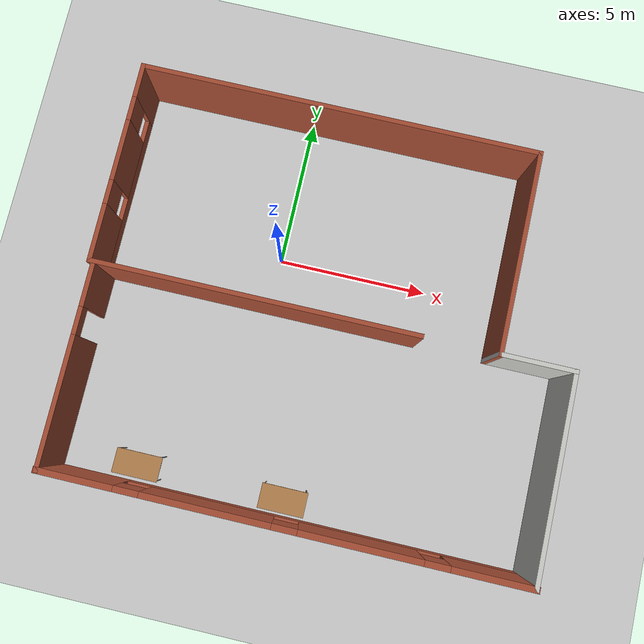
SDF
<sdf version="1.6">
 <world name="default">
  <model name="ground_plane">
   <static>1</static>
   <link name="link">
    <collision name="collision">
     <geometry><plane><normal>0 0 1</normal><size>100 100</size></plane></geometry>
     <surface><friction><ode><mu>100</mu><mu2>50</mu2></ode></friction></surface>
    </collision>
    <visual name="visual">
     <cast_shadows>0</cast_shadows>
     <geometry><plane><normal>0 0 1</normal><size>100 100</size></plane></geometry>
     <material>
      <script><uri>file://media/materials/scripts/gazebo.material</uri><name>Gazebo/Grey</name></script>
     </material>
    </visual>
   </link>
  </model>
  <model name="building">
   <link name="Wall_1">
    <pose>-7.59578 -3.28046 0 0 0 -1.5708</pose>
    <visual name="Wall_1_Visual_0">
     <pose>-2.59836 0 1.25 0 -0 0</pose>
     <geometry><box><size>1.55329 0.15 2.5</size></box></geometry>
     <material>
      <script><uri>file://media/materials/scripts/gazebo.material</uri><name>Gazebo/Bricks</name></script>
      <ambient>0.760784 0.662745 0.627451 1</ambient>
      <shader type="pixel"/>
      <diffuse>1 1 1 1</diffuse>
      <specular>0.2 0.2 0.2 1</specular>
      <emissive>0 0 0 1</emissive>
     </material>
     <meta><layer>0</layer></meta>
    </visual>
    <visual name="Wall_1_Visual_1">
     <pose>1.22664 0 1.25 0 -0 0</pose>
     <geometry><box><size>4.29671 0.15 2.5</size></box></geometry>
     <material>
      <script><uri>file://media/materials/scripts/gazebo.material</uri><name>Gazebo/Bricks</name></script>
      <ambient>0.760784 0.662745 0.627451 1</ambient>
      <shader type="pixel"/>
      <diffuse>1 1 1 1</diffuse>
      <specular>0.2 0.2 0.2 1</specular>
      <emissive>0 0 0 1</emissive>
     </material>
     <meta><layer>0</layer></meta>
    </visual>
    <visual name="Wall_1_Visual_2">
     <pose>-1.37171 0 2.25 0 -0 0</pose>
     <geometry><box><size>0.9 0.15 0.5</size></box></geometry>
     <material>
      <script><uri>file://media/materials/scripts/gazebo.material</uri><name>Gazebo/Bricks</name></script>
      <ambient>0.760784 0.662745 0.627451 1</ambient>
      <shader type="pixel"/>
      <diffuse>1 1 1 1</diffuse>
      <specular>0.2 0.2 0.2 1</specular>
      <emissive>0 0 0 1</emissive>
     </material>
     <meta><layer>0</layer></meta>
    </visual>
    <collision name="Wall_1_Collision_0">
     <pose>-2.59836 0 1.25 0 -0 0</pose>
     <geometry><box><size>1.55329 0.15 2.5</size></box></geometry>
     <surface>
      <friction>
       <ode><mu>1</mu><mu2>1</mu2><fdir1>0 0 0</fdir1><slip1>0</slip1><slip2>0</slip2></ode>
       <torsional>
        <coefficient>1</coefficient>
        <patch_radius>0</patch_radius>
        <surface_radius>0</surface_radius>
        <use_patch_radius>1</use_patch_radius>
        <ode><slip>0</slip></ode>
       </torsional>
      </friction>
      <bounce><restitution_coefficient>0</restitution_coefficient><threshold>1e+06</threshold></bounce>
      <contact>
       <collide_without_contact>0</collide_without_contact>
       <collide_without_contact_bitmask>1</collide_without_contact_bitmask>
       <collide_bitmask>1</collide_bitmask>
       <ode>
        <soft_cfm>0</soft_cfm>
        <soft_erp>0.2</soft_erp>
        <kp>1e+13</kp>
        <kd>1</kd>
        <max_vel>0.01</max_vel>
        <min_depth>0</min_depth>
       </ode>
       <bullet>
        <split_impulse>1</split_impulse>
        <split_impulse_penetration_threshold>-0.01</split_impulse_penetration_threshold>
        <soft_cfm>0</soft_cfm>
        <soft_erp>0.2</soft_erp>
        <kp>1e+13</kp>
        <kd>1</kd>
       </bullet>
      </contact>
     </surface>
    </collision>
    <collision name="Wall_1_Collision_1">
     <pose>1.22664 0 1.25 0 -0 0</pose>
     <geometry><box><size>4.29671 0.15 2.5</size></box></geometry>
     <surface>
      <friction>
       <ode><mu>1</mu><mu2>1</mu2><fdir1>0 0 0</fdir1><slip1>0</slip1><slip2>0</slip2></ode>
       <torsional>
        <coefficient>1</coefficient>
        <patch_radius>0</patch_radius>
        <surface_radius>0</surface_radius>
        <use_patch_radius>1</use_patch_radius>
        <ode><slip>0</slip></ode>
       </torsional>
      </friction>
      <bounce><restitution_coefficient>0</restitution_coefficient><threshold>1e+06</threshold></bounce>
      <contact>
       <collide_without_contact>0</collide_without_contact>
       <collide_without_contact_bitmask>1</collide_without_contact_bitmask>
       <collide_bitmask>1</collide_bitmask>
       <ode>
        <soft_cfm>0</soft_cfm>
        <soft_erp>0.2</soft_erp>
        <kp>1e+13</kp>
        <kd>1</kd>
        <max_vel>0.01</max_vel>
        <min_depth>0</min_depth>
       </ode>
       <bullet>
        <split_impulse>1</split_impulse>
        <split_impulse_penetration_threshold>-0.01</split_impulse_penetration_threshold>
        <soft_cfm>0</soft_cfm>
        <soft_erp>0.2</soft_erp>
        <kp>1e+13</kp>
        <kd>1</kd>
       </bullet>
      </contact>
     </surface>
    </collision>
    <collision name="Wall_1_Collision_2">
     <pose>-1.37171 0 2.25 0 -0 0</pose>
     <geometry><box><size>0.9 0.15 0.5</size></box></geometry>
     <surface>
      <friction>
       <ode><mu>1</mu><mu2>1</mu2><fdir1>0 0 0</fdir1><slip1>0</slip1><slip2>0</slip2></ode>
       <torsional>
        <coefficient>1</coefficient>
        <patch_radius>0</patch_radius>
        <surface_radius>0</surface_radius>
        <use_patch_radius>1</use_patch_radius>
        <ode><slip>0</slip></ode>
       </torsional>
      </friction>
      <bounce><restitution_coefficient>0</restitution_coefficient><threshold>1e+06</threshold></bounce>
      <contact>
       <collide_without_contact>0</collide_without_contact>
       <collide_without_contact_bitmask>1</collide_without_contact_bitmask>
       <collide_bitmask>1</collide_bitmask>
       <ode>
        <soft_cfm>0</soft_cfm>
        <soft_erp>0.2</soft_erp>
        <kp>1e+13</kp>
        <kd>1</kd>
        <max_vel>0.01</max_vel>
        <min_depth>0</min_depth>
       </ode>
       <bullet>
        <split_impulse>1</split_impulse>
        <split_impulse_penetration_threshold>-0.01</split_impulse_penetration_threshold>
        <soft_cfm>0</soft_cfm>
        <soft_erp>0.2</soft_erp>
        <kp>1e+13</kp>
        <kd>1</kd>
       </bullet>
      </contact>
     </surface>
    </collision>
   </link>
   <link name="Wall_2">
    <pose>0.058222 -6.58396 0 0 0 -0.000457</pose>
    <visual name="Wall_2_Visual_0">
     <pose>-6.51509 0 1.25 0 -0 0</pose>
     <geometry><box><size>2.47815 0.2 2.5</size></box></geometry>
     <material>
      <script><uri>file://media/materials/scripts/gazebo.material</uri><name>Gazebo/Bricks</name></script>
      <ambient>1 1 1 1</ambient>
      <shader type="pixel"/>
      <diffuse>1 1 1 1</diffuse>
      <specular>0.2 0.2 0.2 1</specular>
      <emissive>0 0 0 1</emissive>
     </material>
     <meta><layer>0</layer></meta>
    </visual>
    <visual name="Wall_2_Visual_1">
     <pose>1.23908 0 0.25 0 -0 0</pose>
     <geometry><box><size>13.0302 0.2 0.5</size></box></geometry>
     <material>
      <script><uri>file://media/materials/scripts/gazebo.material</uri><name>Gazebo/Bricks</name></script>
      <ambient>1 1 1 1</ambient>
      <shader type="pixel"/>
      <diffuse>1 1 1 1</diffuse>
      <specular>0.2 0.2 0.2 1</specular>
      <emissive>0 0 0 1</emissive>
     </material>
     <meta><layer>0</layer></meta>
    </visual>
    <visual name="Wall_2_Visual_2">
     <pose>-2.43222 0 1.5 0 -0 0</pose>
     <geometry><box><size>4.08759 0.2 2</size></box></geometry>
     <material>
      <script><uri>file://media/materials/scripts/gazebo.material</uri><name>Gazebo/Bricks</name></script>
      <ambient>1 1 1 1</ambient>
      <shader type="pixel"/>
      <diffuse>1 1 1 1</diffuse>
      <specular>0.2 0.2 0.2 1</specular>
      <emissive>0 0 0 1</emissive>
     </material>
     <meta><layer>0</layer></meta>
    </visual>
    <visual name="Wall_2_Visual_3">
     <pose>2.34473 0 1.5 0 -0 0</pose>
     <geometry><box><size>3.86631 0.2 2</size></box></geometry>
     <material>
      <script><uri>file://media/materials/scripts/gazebo.material</uri><name>Gazebo/Bricks</name></script>
      <ambient>1 1 1 1</ambient>
      <shader type="pixel"/>
      <diffuse>1 1 1 1</diffuse>
      <specular>0.2 0.2 0.2 1</specular>
      <emissive>0 0 0 1</emissive>
     </material>
     <meta><layer>0</layer></meta>
    </visual>
    <visual name="Wall_2_Visual_4">
     <pose>6.41603 0 1.5 0 -0 0</pose>
     <geometry><box><size>2.67629 0.2 2</size></box></geometry>
     <material>
      <script><uri>file://media/materials/scripts/gazebo.material</uri><name>Gazebo/Bricks</name></script>
      <ambient>1 1 1 1</ambient>
      <shader type="pixel"/>
      <diffuse>1 1 1 1</diffuse>
      <specular>0.2 0.2 0.2 1</specular>
      <emissive>0 0 0 1</emissive>
     </material>
     <meta><layer>0</layer></meta>
    </visual>
    <visual name="Wall_2_Visual_5">
     <pose>-4.87602 0 1.9 0 -0 0</pose>
     <geometry><box><size>0.8 0.2 1.2</size></box></geometry>
     <material>
      <script><uri>file://media/materials/scripts/gazebo.material</uri><name>Gazebo/Bricks</name></script>
      <ambient>1 1 1 1</ambient>
      <shader type="pixel"/>
      <diffuse>1 1 1 1</diffuse>
      <specular>0.2 0.2 0.2 1</specular>
      <emissive>0 0 0 1</emissive>
     </material>
     <meta><layer>0</layer></meta>
    </visual>
    <visual name="Wall_2_Visual_6">
     <pose>0.011571 0 1.9 0 -0 0</pose>
     <geometry><box><size>0.8 0.2 1.2</size></box></geometry>
     <material>
      <script><uri>file://media/materials/scripts/gazebo.material</uri><name>Gazebo/Bricks</name></script>
      <ambient>1 1 1 1</ambient>
      <shader type="pixel"/>
      <diffuse>1 1 1 1</diffuse>
      <specular>0.2 0.2 0.2 1</specular>
      <emissive>0 0 0 1</emissive>
     </material>
     <meta><layer>0</layer></meta>
    </visual>
    <visual name="Wall_2_Visual_7">
     <pose>4.67788 0 1.9 0 -0 0</pose>
     <geometry><box><size>0.8 0.2 1.2</size></box></geometry>
     <material>
      <script><uri>file://media/materials/scripts/gazebo.material</uri><name>Gazebo/Bricks</name></script>
      <ambient>1 1 1 1</ambient>
      <shader type="pixel"/>
      <diffuse>1 1 1 1</diffuse>
      <specular>0.2 0.2 0.2 1</specular>
      <emissive>0 0 0 1</emissive>
     </material>
     <meta><layer>0</layer></meta>
    </visual>
    <collision name="Wall_2_Collision_0">
     <pose>-6.51509 0 1.25 0 -0 0</pose>
     <geometry><box><size>2.47815 0.2 2.5</size></box></geometry>
     <surface>
      <friction>
       <ode><mu>1</mu><mu2>1</mu2><fdir1>0 0 0</fdir1><slip1>0</slip1><slip2>0</slip2></ode>
       <torsional>
        <coefficient>1</coefficient>
        <patch_radius>0</patch_radius>
        <surface_radius>0</surface_radius>
        <use_patch_radius>1</use_patch_radius>
        <ode><slip>0</slip></ode>
       </torsional>
      </friction>
      <bounce><restitution_coefficient>0</restitution_coefficient><threshold>1e+06</threshold></bounce>
      <contact>
       <collide_without_contact>0</collide_without_contact>
       <collide_without_contact_bitmask>1</collide_without_contact_bitmask>
       <collide_bitmask>1</collide_bitmask>
       <ode>
        <soft_cfm>0</soft_cfm>
        <soft_erp>0.2</soft_erp>
        <kp>1e+13</kp>
        <kd>1</kd>
        <max_vel>0.01</max_vel>
        <min_depth>0</min_depth>
       </ode>
       <bullet>
        <split_impulse>1</split_impulse>
        <split_impulse_penetration_threshold>-0.01</split_impulse_penetration_threshold>
        <soft_cfm>0</soft_cfm>
        <soft_erp>0.2</soft_erp>
        <kp>1e+13</kp>
        <kd>1</kd>
       </bullet>
      </contact>
     </surface>
    </collision>
    <collision name="Wall_2_Collision_1">
     <pose>1.23908 0 0.25 0 -0 0</pose>
     <geometry><box><size>13.0302 0.2 0.5</size></box></geometry>
     <surface>
      <friction>
       <ode><mu>1</mu><mu2>1</mu2><fdir1>0 0 0</fdir1><slip1>0</slip1><slip2>0</slip2></ode>
       <torsional>
        <coefficient>1</coefficient>
        <patch_radius>0</patch_radius>
        <surface_radius>0</surface_radius>
        <use_patch_radius>1</use_patch_radius>
        <ode><slip>0</slip></ode>
       </torsional>
      </friction>
      <bounce><restitution_coefficient>0</restitution_coefficient><threshold>1e+06</threshold></bounce>
      <contact>
       <collide_without_contact>0</collide_without_contact>
       <collide_without_contact_bitmask>1</collide_without_contact_bitmask>
       <collide_bitmask>1</collide_bitmask>
       <ode>
        <soft_cfm>0</soft_cfm>
        <soft_erp>0.2</soft_erp>
        <kp>1e+13</kp>
        <kd>1</kd>
        <max_vel>0.01</max_vel>
        <min_depth>0</min_depth>
       </ode>
       <bullet>
        <split_impulse>1</split_impulse>
        <split_impulse_penetration_threshold>-0.01</split_impulse_penetration_threshold>
        <soft_cfm>0</soft_cfm>
        <soft_erp>0.2</soft_erp>
        <kp>1e+13</kp>
        <kd>1</kd>
       </bullet>
      </contact>
     </surface>
    </collision>
    <collision name="Wall_2_Collision_4">
     <pose>6.41603 0 1.5 0 -0 0</pose>
     <geometry><box><size>2.67629 0.2 2</size></box></geometry>
     <surface>
      <friction>
       <ode><mu>1</mu><mu2>1</mu2><fdir1>0 0 0</fdir1><slip1>0</slip1><slip2>0</slip2></ode>
       <torsional>
        <coefficient>1</coefficient>
        <patch_radius>0</patch_radius>
        <surface_radius>0</surface_radius>
        <use_patch_radius>1</use_patch_radius>
        <ode><slip>0</slip></ode>
       </torsional>
      </friction>
      <bounce><restitution_coefficient>0</restitution_coefficient><threshold>1e+06</threshold></bounce>
      <contact>
       <collide_without_contact>0</collide_without_contact>
       <collide_without_contact_bitmask>1</collide_without_contact_bitmask>
       <collide_bitmask>1</collide_bitmask>
       <ode>
        <soft_cfm>0</soft_cfm>
        <soft_erp>0.2</soft_erp>
        <kp>1e+13</kp>
        <kd>1</kd>
        <max_vel>0.01</max_vel>
        <min_depth>0</min_depth>
       </ode>
       <bullet>
        <split_impulse>1</split_impulse>
        <split_impulse_penetration_threshold>-0.01</split_impulse_penetration_threshold>
        <soft_cfm>0</soft_cfm>
        <soft_erp>0.2</soft_erp>
        <kp>1e+13</kp>
        <kd>1</kd>
       </bullet>
      </contact>
     </surface>
    </collision>
    <collision name="Wall_2_Collision_2">
     <pose>-2.43222 0 1.5 0 -0 0</pose>
     <geometry><box><size>4.08759 0.2 2</size></box></geometry>
     <surface>
      <friction>
       <ode><mu>1</mu><mu2>1</mu2><fdir1>0 0 0</fdir1><slip1>0</slip1><slip2>0</slip2></ode>
       <torsional>
        <coefficient>1</coefficient>
        <patch_radius>0</patch_radius>
        <surface_radius>0</surface_radius>
        <use_patch_radius>1</use_patch_radius>
        <ode><slip>0</slip></ode>
       </torsional>
      </friction>
      <bounce><restitution_coefficient>0</restitution_coefficient><threshold>1e+06</threshold></bounce>
      <contact>
       <collide_without_contact>0</collide_without_contact>
       <collide_without_contact_bitmask>1</collide_without_contact_bitmask>
       <collide_bitmask>1</collide_bitmask>
       <ode>
        <soft_cfm>0</soft_cfm>
        <soft_erp>0.2</soft_erp>
        <kp>1e+13</kp>
        <kd>1</kd>
        <max_vel>0.01</max_vel>
        <min_depth>0</min_depth>
       </ode>
       <bullet>
        <split_impulse>1</split_impulse>
        <split_impulse_penetration_threshold>-0.01</split_impulse_penetration_threshold>
        <soft_cfm>0</soft_cfm>
        <soft_erp>0.2</soft_erp>
        <kp>1e+13</kp>
        <kd>1</kd>
       </bullet>
      </contact>
     </surface>
    </collision>
    <collision name="Wall_2_Collision_3">
     <pose>2.34473 0 1.5 0 -0 0</pose>
     <geometry><box><size>3.86631 0.2 2</size></box></geometry>
     <surface>
      <friction>
       <ode><mu>1</mu><mu2>1</mu2><fdir1>0 0 0</fdir1><slip1>0</slip1><slip2>0</slip2></ode>
       <torsional>
        <coefficient>1</coefficient>
        <patch_radius>0</patch_radius>
        <surface_radius>0</surface_radius>
        <use_patch_radius>1</use_patch_radius>
        <ode><slip>0</slip></ode>
       </torsional>
      </friction>
      <bounce><restitution_coefficient>0</restitution_coefficient><threshold>1e+06</threshold></bounce>
      <contact>
       <collide_without_contact>0</collide_without_contact>
       <collide_without_contact_bitmask>1</collide_without_contact_bitmask>
       <collide_bitmask>1</collide_bitmask>
       <ode>
        <soft_cfm>0</soft_cfm>
        <soft_erp>0.2</soft_erp>
        <kp>1e+13</kp>
        <kd>1</kd>
        <max_vel>0.01</max_vel>
        <min_depth>0</min_depth>
       </ode>
       <bullet>
        <split_impulse>1</split_impulse>
        <split_impulse_penetration_threshold>-0.01</split_impulse_penetration_threshold>
        <soft_cfm>0</soft_cfm>
        <soft_erp>0.2</soft_erp>
        <kp>1e+13</kp>
        <kd>1</kd>
       </bullet>
      </contact>
     </surface>
    </collision>
    <collision name="Wall_2_Collision_5">
     <pose>-4.87602 0 1.9 0 -0 0</pose>
     <geometry><box><size>0.8 0.2 1.2</size></box></geometry>
     <surface>
      <friction>
       <ode><mu>1</mu><mu2>1</mu2><fdir1>0 0 0</fdir1><slip1>0</slip1><slip2>0</slip2></ode>
       <torsional>
        <coefficient>1</coefficient>
        <patch_radius>0</patch_radius>
        <surface_radius>0</surface_radius>
        <use_patch_radius>1</use_patch_radius>
        <ode><slip>0</slip></ode>
       </torsional>
      </friction>
      <bounce><restitution_coefficient>0</restitution_coefficient><threshold>1e+06</threshold></bounce>
      <contact>
       <collide_without_contact>0</collide_without_contact>
       <collide_without_contact_bitmask>1</collide_without_contact_bitmask>
       <collide_bitmask>1</collide_bitmask>
       <ode>
        <soft_cfm>0</soft_cfm>
        <soft_erp>0.2</soft_erp>
        <kp>1e+13</kp>
        <kd>1</kd>
        <max_vel>0.01</max_vel>
        <min_depth>0</min_depth>
       </ode>
       <bullet>
        <split_impulse>1</split_impulse>
        <split_impulse_penetration_threshold>-0.01</split_impulse_penetration_threshold>
        <soft_cfm>0</soft_cfm>
        <soft_erp>0.2</soft_erp>
        <kp>1e+13</kp>
        <kd>1</kd>
       </bullet>
      </contact>
     </surface>
    </collision>
    <collision name="Wall_2_Collision_6">
     <pose>0.011571 0 1.9 0 -0 0</pose>
     <geometry><box><size>0.8 0.2 1.2</size></box></geometry>
     <surface>
      <friction>
       <ode><mu>1</mu><mu2>1</mu2><fdir1>0 0 0</fdir1><slip1>0</slip1><slip2>0</slip2></ode>
       <torsional>
        <coefficient>1</coefficient>
        <patch_radius>0</patch_radius>
        <surface_radius>0</surface_radius>
        <use_patch_radius>1</use_patch_radius>
        <ode><slip>0</slip></ode>
       </torsional>
      </friction>
      <bounce><restitution_coefficient>0</restitution_coefficient><threshold>1e+06</threshold></bounce>
      <contact>
       <collide_without_contact>0</collide_without_contact>
       <collide_without_contact_bitmask>1</collide_without_contact_bitmask>
       <collide_bitmask>1</collide_bitmask>
       <ode>
        <soft_cfm>0</soft_cfm>
        <soft_erp>0.2</soft_erp>
        <kp>1e+13</kp>
        <kd>1</kd>
        <max_vel>0.01</max_vel>
        <min_depth>0</min_depth>
       </ode>
       <bullet>
        <split_impulse>1</split_impulse>
        <split_impulse_penetration_threshold>-0.01</split_impulse_penetration_threshold>
        <soft_cfm>0</soft_cfm>
        <soft_erp>0.2</soft_erp>
        <kp>1e+13</kp>
        <kd>1</kd>
       </bullet>
      </contact>
     </surface>
    </collision>
    <collision name="Wall_2_Collision_7">
     <pose>4.67788 0 1.9 0 -0 0</pose>
     <geometry><box><size>0.8 0.2 1.2</size></box></geometry>
     <surface>
      <friction>
       <ode><mu>1</mu><mu2>1</mu2><fdir1>0 0 0</fdir1><slip1>0</slip1><slip2>0</slip2></ode>
       <torsional>
        <coefficient>1</coefficient>
        <patch_radius>0</patch_radius>
        <surface_radius>0</surface_radius>
        <use_patch_radius>1</use_patch_radius>
        <ode><slip>0</slip></ode>
       </torsional>
      </friction>
      <bounce><restitution_coefficient>0</restitution_coefficient><threshold>1e+06</threshold></bounce>
      <contact>
       <collide_without_contact>0</collide_without_contact>
       <collide_without_contact_bitmask>1</collide_without_contact_bitmask>
       <collide_bitmask>1</collide_bitmask>
       <ode>
        <soft_cfm>0</soft_cfm>
        <soft_erp>0.2</soft_erp>
        <kp>1e+13</kp>
        <kd>1</kd>
        <max_vel>0.01</max_vel>
        <min_depth>0</min_depth>
       </ode>
       <bullet>
        <split_impulse>1</split_impulse>
        <split_impulse_penetration_threshold>-0.01</split_impulse_penetration_threshold>
        <soft_cfm>0</soft_cfm>
        <soft_erp>0.2</soft_erp>
        <kp>1e+13</kp>
        <kd>1</kd>
       </bullet>
      </contact>
     </surface>
    </collision>
   </link>
   <link name="Wall_3">
    <pose>7.71239 -3.28748 0 0 -0 1.57075</pose>
    <visual name="Wall_3_Visual">
     <pose>0 0 1.25 0 -0 0</pose>
     <geometry><box><size>6.75 0.15 2.5</size></box></geometry>
     <material>
      <script><uri>file://media/materials/scripts/gazebo.material</uri><name>Gazebo/CeilingTiled</name></script>
      <ambient>1 1 1 1</ambient>
      <shader type="pixel"/>
      <diffuse>1 1 1 1</diffuse>
      <specular>0 0 0 1</specular>
      <emissive>0 0 0 1</emissive>
     </material>
     <meta><layer>0</layer></meta>
    </visual>
    <collision name="Wall_3_Collision">
     <pose>0 0 1.25 0 -0 0</pose>
     <geometry><box><size>6.75 0.15 2.5</size></box></geometry>
     <surface>
      <friction>
       <ode><mu>1</mu><mu2>1</mu2><fdir1>0 0 0</fdir1><slip1>0</slip1><slip2>0</slip2></ode>
       <torsional>
        <coefficient>1</coefficient>
        <patch_radius>0</patch_radius>
        <surface_radius>0</surface_radius>
        <use_patch_radius>1</use_patch_radius>
        <ode><slip>0</slip></ode>
       </torsional>
      </friction>
      <bounce><restitution_coefficient>0</restitution_coefficient><threshold>1e+06</threshold></bounce>
      <contact>
       <collide_without_contact>0</collide_without_contact>
       <collide_without_contact_bitmask>1</collide_without_contact_bitmask>
       <collide_bitmask>1</collide_bitmask>
       <ode>
        <soft_cfm>0</soft_cfm>
        <soft_erp>0.2</soft_erp>
        <kp>1e+13</kp>
        <kd>1</kd>
        <max_vel>0.01</max_vel>
        <min_depth>0</min_depth>
       </ode>
       <bullet>
        <split_impulse>1</split_impulse>
        <split_impulse_penetration_threshold>-0.01</split_impulse_penetration_threshold>
        <soft_cfm>0</soft_cfm>
        <soft_erp>0.2</soft_erp>
        <kp>1e+13</kp>
        <kd>1</kd>
       </bullet>
      </contact>
     </surface>
    </collision>
   </link>
   <link name="Wall_4">
    <pose>6.53756 0.012505 0 0 -0 3.14159</pose>
    <visual name="Wall_4_Visual">
     <pose>0 0 1.25 0 -0 0</pose>
     <geometry><box><size>2.5 0.15 2.5</size></box></geometry>
     <material>
      <script><uri>file://media/materials/scripts/gazebo.material</uri><name>Gazebo/CeilingTiled</name></script>
      <ambient>1 1 1 1</ambient>
      <shader type="pixel"/>
      <diffuse>1 1 1 1</diffuse>
      <specular>0 0 0 1</specular>
      <emissive>0 0 0 1</emissive>
     </material>
     <meta><layer>0</layer></meta>
    </visual>
    <collision name="Wall_4_Collision">
     <pose>0 0 1.25 0 -0 0</pose>
     <geometry><box><size>2.5 0.15 2.5</size></box></geometry>
     <surface>
      <friction>
       <ode><mu>1</mu><mu2>1</mu2><fdir1>0 0 0</fdir1><slip1>0</slip1><slip2>0</slip2></ode>
       <torsional>
        <coefficient>1</coefficient>
        <patch_radius>0</patch_radius>
        <surface_radius>0</surface_radius>
        <use_patch_radius>1</use_patch_radius>
        <ode><slip>0</slip></ode>
       </torsional>
      </friction>
      <bounce><restitution_coefficient>0</restitution_coefficient><threshold>1e+06</threshold></bounce>
      <contact>
       <collide_without_contact>0</collide_without_contact>
       <collide_without_contact_bitmask>1</collide_without_contact_bitmask>
       <collide_bitmask>1</collide_bitmask>
       <ode>
        <soft_cfm>0</soft_cfm>
        <soft_erp>0.2</soft_erp>
        <kp>1e+13</kp>
        <kd>1</kd>
        <max_vel>0.01</max_vel>
        <min_depth>0</min_depth>
       </ode>
       <bullet>
        <split_impulse>1</split_impulse>
        <split_impulse_penetration_threshold>-0.01</split_impulse_penetration_threshold>
        <soft_cfm>0</soft_cfm>
        <soft_erp>0.2</soft_erp>
        <kp>1e+13</kp>
        <kd>1</kd>
       </bullet>
      </contact>
     </surface>
    </collision>
   </link>
   <link name="Wall_5">
    <pose>5.36256 3.3125 0 0 -0 1.5708</pose>
    <visual name="Wall_5_Visual">
     <pose>0 0 1.25 0 -0 0</pose>
     <geometry><box><size>6.75 0.15 2.5</size></box></geometry>
     <material>
      <script><uri>file://media/materials/scripts/gazebo.material</uri><name>Gazebo/Bricks</name></script>
      <ambient>1 1 1 1</ambient>
      <shader type="pixel"/>
      <diffuse>1 1 1 1</diffuse>
      <specular>0.2 0.2 0.2 1</specular>
      <emissive>0 0 0 1</emissive>
     </material>
     <meta><layer>0</layer></meta>
    </visual>
    <collision name="Wall_5_Collision">
     <pose>0 0 1.25 0 -0 0</pose>
     <geometry><box><size>6.75 0.15 2.5</size></box></geometry>
     <surface>
      <friction>
       <ode><mu>1</mu><mu2>1</mu2><fdir1>0 0 0</fdir1><slip1>0</slip1><slip2>0</slip2></ode>
       <torsional>
        <coefficient>1</coefficient>
        <patch_radius>0</patch_radius>
        <surface_radius>0</surface_radius>
        <use_patch_radius>1</use_patch_radius>
        <ode><slip>0</slip></ode>
       </torsional>
      </friction>
      <bounce><restitution_coefficient>0</restitution_coefficient><threshold>1e+06</threshold></bounce>
      <contact>
       <collide_without_contact>0</collide_without_contact>
       <collide_without_contact_bitmask>1</collide_without_contact_bitmask>
       <collide_bitmask>1</collide_bitmask>
       <ode>
        <soft_cfm>0</soft_cfm>
        <soft_erp>0.2</soft_erp>
        <kp>1e+13</kp>
        <kd>1</kd>
        <max_vel>0.01</max_vel>
        <min_depth>0</min_depth>
       </ode>
       <bullet>
        <split_impulse>1</split_impulse>
        <split_impulse_penetration_threshold>-0.01</split_impulse_penetration_threshold>
        <soft_cfm>0</soft_cfm>
        <soft_erp>0.2</soft_erp>
        <kp>1e+13</kp>
        <kd>1</kd>
       </bullet>
      </contact>
     </surface>
    </collision>
   </link>
   <link name="Wall_6">
    <pose>-1.18744 6.6125 0 0 -0 3.14159</pose>
    <visual name="Wall_6_Visual">
     <pose>0 0 1.25 0 -0 0</pose>
     <geometry><box><size>13.25 0.15 2.5</size></box></geometry>
     <material>
      <script><uri>file://media/materials/scripts/gazebo.material</uri><name>Gazebo/Bricks</name></script>
      <ambient>1 1 1 1</ambient>
      <shader type="pixel"/>
      <diffuse>1 1 1 1</diffuse>
      <specular>0.2 0.2 0.2 1</specular>
      <emissive>0 0 0 1</emissive>
     </material>
     <meta><layer>0</layer></meta>
    </visual>
    <collision name="Wall_6_Collision">
     <pose>0 0 1.25 0 -0 0</pose>
     <geometry><box><size>13.25 0.15 2.5</size></box></geometry>
     <surface>
      <friction>
       <ode><mu>1</mu><mu2>1</mu2><fdir1>0 0 0</fdir1><slip1>0</slip1><slip2>0</slip2></ode>
       <torsional>
        <coefficient>1</coefficient>
        <patch_radius>0</patch_radius>
        <surface_radius>0</surface_radius>
        <use_patch_radius>1</use_patch_radius>
        <ode><slip>0</slip></ode>
       </torsional>
      </friction>
      <bounce><restitution_coefficient>0</restitution_coefficient><threshold>1e+06</threshold></bounce>
      <contact>
       <collide_without_contact>0</collide_without_contact>
       <collide_without_contact_bitmask>1</collide_without_contact_bitmask>
       <collide_bitmask>1</collide_bitmask>
       <ode>
        <soft_cfm>0</soft_cfm>
        <soft_erp>0.2</soft_erp>
        <kp>1e+13</kp>
        <kd>1</kd>
        <max_vel>0.01</max_vel>
        <min_depth>0</min_depth>
       </ode>
       <bullet>
        <split_impulse>1</split_impulse>
        <split_impulse_penetration_threshold>-0.01</split_impulse_penetration_threshold>
        <soft_cfm>0</soft_cfm>
        <soft_erp>0.2</soft_erp>
        <kp>1e+13</kp>
        <kd>1</kd>
       </bullet>
      </contact>
     </surface>
    </collision>
   </link>
   <link name="Wall_7">
    <pose>-7.73744 3.3125 0 0 0 -1.5708</pose>
    <visual name="Wall_7_Visual_0">
     <pose>-2.79436 0 1.25 0 -0 0</pose>
     <geometry><box><size>1.16129 0.15 2.5</size></box></geometry>
     <material>
      <script><uri>file://media/materials/scripts/gazebo.material</uri><name>Gazebo/Bricks</name></script>
      <ambient>1 1 1 1</ambient>
      <shader type="pixel"/>
      <diffuse>1 1 1 1</diffuse>
      <specular>0.2 0.2 0.2 1</specular>
      <emissive>0 0 0 1</emissive>
     </material>
     <meta><layer>0</layer></meta>
    </visual>
    <visual name="Wall_7_Visual_1">
     <pose>0.580643 0 0.25 0 -0 0</pose>
     <geometry><box><size>5.58871 0.15 0.5</size></box></geometry>
     <material>
      <script><uri>file://media/materials/scripts/gazebo.material</uri><name>Gazebo/Bricks</name></script>
      <ambient>1 1 1 1</ambient>
      <shader type="pixel"/>
      <diffuse>1 1 1 1</diffuse>
      <specular>0.2 0.2 0.2 1</specular>
      <emissive>0 0 0 1</emissive>
     </material>
     <meta><layer>0</layer></meta>
    </visual>
    <visual name="Wall_7_Visual_2">
     <pose>-0.391268 0 1.5 0 -0 0</pose>
     <geometry><box><size>2.04489 0.15 2</size></box></geometry>
     <material>
      <script><uri>file://media/materials/scripts/gazebo.material</uri><name>Gazebo/Bricks</name></script>
      <ambient>1 1 1 1</ambient>
      <shader type="pixel"/>
      <diffuse>1 1 1 1</diffuse>
      <specular>0.2 0.2 0.2 1</specular>
      <emissive>0 0 0 1</emissive>
     </material>
     <meta><layer>0</layer></meta>
    </visual>
    <visual name="Wall_7_Visual_3">
     <pose>2.40309 0 1.5 0 -0 0</pose>
     <geometry><box><size>1.94382 0.15 2</size></box></geometry>
     <material>
      <script><uri>file://media/materials/scripts/gazebo.material</uri><name>Gazebo/Bricks</name></script>
      <ambient>1 1 1 1</ambient>
      <shader type="pixel"/>
      <diffuse>1 1 1 1</diffuse>
      <specular>0.2 0.2 0.2 1</specular>
      <emissive>0 0 0 1</emissive>
     </material>
     <meta><layer>0</layer></meta>
    </visual>
    <visual name="Wall_7_Visual_4">
     <pose>-1.81371 0 1.9 0 -0 0</pose>
     <geometry><box><size>0.8 0.15 1.2</size></box></geometry>
     <material>
      <script><uri>file://media/materials/scripts/gazebo.material</uri><name>Gazebo/Bricks</name></script>
      <ambient>1 1 1 1</ambient>
      <shader type="pixel"/>
      <diffuse>1 1 1 1</diffuse>
      <specular>0.2 0.2 0.2 1</specular>
      <emissive>0 0 0 1</emissive>
     </material>
     <meta><layer>0</layer></meta>
    </visual>
    <visual name="Wall_7_Visual_5">
     <pose>1.03118 0 1.9 0 -0 0</pose>
     <geometry><box><size>0.8 0.15 1.2</size></box></geometry>
     <material>
      <script><uri>file://media/materials/scripts/gazebo.material</uri><name>Gazebo/Bricks</name></script>
      <ambient>1 1 1 1</ambient>
      <shader type="pixel"/>
      <diffuse>1 1 1 1</diffuse>
      <specular>0.2 0.2 0.2 1</specular>
      <emissive>0 0 0 1</emissive>
     </material>
     <meta><layer>0</layer></meta>
    </visual>
    <collision name="Wall_7_Collision_3">
     <pose>2.40309 0 1.5 0 -0 0</pose>
     <geometry><box><size>1.94382 0.15 2</size></box></geometry>
     <surface>
      <friction>
       <ode><mu>1</mu><mu2>1</mu2><fdir1>0 0 0</fdir1><slip1>0</slip1><slip2>0</slip2></ode>
       <torsional>
        <coefficient>1</coefficient>
        <patch_radius>0</patch_radius>
        <surface_radius>0</surface_radius>
        <use_patch_radius>1</use_patch_radius>
        <ode><slip>0</slip></ode>
       </torsional>
      </friction>
      <bounce><restitution_coefficient>0</restitution_coefficient><threshold>1e+06</threshold></bounce>
      <contact>
       <collide_without_contact>0</collide_without_contact>
       <collide_without_contact_bitmask>1</collide_without_contact_bitmask>
       <collide_bitmask>1</collide_bitmask>
       <ode>
        <soft_cfm>0</soft_cfm>
        <soft_erp>0.2</soft_erp>
        <kp>1e+13</kp>
        <kd>1</kd>
        <max_vel>0.01</max_vel>
        <min_depth>0</min_depth>
       </ode>
       <bullet>
        <split_impulse>1</split_impulse>
        <split_impulse_penetration_threshold>-0.01</split_impulse_penetration_threshold>
        <soft_cfm>0</soft_cfm>
        <soft_erp>0.2</soft_erp>
        <kp>1e+13</kp>
        <kd>1</kd>
       </bullet>
      </contact>
     </surface>
    </collision>
    <collision name="Wall_7_Collision_4">
     <pose>-1.81371 0 1.9 0 -0 0</pose>
     <geometry><box><size>0.8 0.15 1.2</size></box></geometry>
     <surface>
      <friction>
       <ode><mu>1</mu><mu2>1</mu2><fdir1>0 0 0</fdir1><slip1>0</slip1><slip2>0</slip2></ode>
       <torsional>
        <coefficient>1</coefficient>
        <patch_radius>0</patch_radius>
        <surface_radius>0</surface_radius>
        <use_patch_radius>1</use_patch_radius>
        <ode><slip>0</slip></ode>
       </torsional>
      </friction>
      <bounce><restitution_coefficient>0</restitution_coefficient><threshold>1e+06</threshold></bounce>
      <contact>
       <collide_without_contact>0</collide_without_contact>
       <collide_without_contact_bitmask>1</collide_without_contact_bitmask>
       <collide_bitmask>1</collide_bitmask>
       <ode>
        <soft_cfm>0</soft_cfm>
        <soft_erp>0.2</soft_erp>
        <kp>1e+13</kp>
        <kd>1</kd>
        <max_vel>0.01</max_vel>
        <min_depth>0</min_depth>
       </ode>
       <bullet>
        <split_impulse>1</split_impulse>
        <split_impulse_penetration_threshold>-0.01</split_impulse_penetration_threshold>
        <soft_cfm>0</soft_cfm>
        <soft_erp>0.2</soft_erp>
        <kp>1e+13</kp>
        <kd>1</kd>
       </bullet>
      </contact>
     </surface>
    </collision>
    <collision name="Wall_7_Collision_0">
     <pose>-2.79436 0 1.25 0 -0 0</pose>
     <geometry><box><size>1.16129 0.15 2.5</size></box></geometry>
     <surface>
      <friction>
       <ode><mu>1</mu><mu2>1</mu2><fdir1>0 0 0</fdir1><slip1>0</slip1><slip2>0</slip2></ode>
       <torsional>
        <coefficient>1</coefficient>
        <patch_radius>0</patch_radius>
        <surface_radius>0</surface_radius>
        <use_patch_radius>1</use_patch_radius>
        <ode><slip>0</slip></ode>
       </torsional>
      </friction>
      <bounce><restitution_coefficient>0</restitution_coefficient><threshold>1e+06</threshold></bounce>
      <contact>
       <collide_without_contact>0</collide_without_contact>
       <collide_without_contact_bitmask>1</collide_without_contact_bitmask>
       <collide_bitmask>1</collide_bitmask>
       <ode>
        <soft_cfm>0</soft_cfm>
        <soft_erp>0.2</soft_erp>
        <kp>1e+13</kp>
        <kd>1</kd>
        <max_vel>0.01</max_vel>
        <min_depth>0</min_depth>
       </ode>
       <bullet>
        <split_impulse>1</split_impulse>
        <split_impulse_penetration_threshold>-0.01</split_impulse_penetration_threshold>
        <soft_cfm>0</soft_cfm>
        <soft_erp>0.2</soft_erp>
        <kp>1e+13</kp>
        <kd>1</kd>
       </bullet>
      </contact>
     </surface>
    </collision>
    <collision name="Wall_7_Collision_2">
     <pose>-0.391268 0 1.5 0 -0 0</pose>
     <geometry><box><size>2.04489 0.15 2</size></box></geometry>
     <surface>
      <friction>
       <ode><mu>1</mu><mu2>1</mu2><fdir1>0 0 0</fdir1><slip1>0</slip1><slip2>0</slip2></ode>
       <torsional>
        <coefficient>1</coefficient>
        <patch_radius>0</patch_radius>
        <surface_radius>0</surface_radius>
        <use_patch_radius>1</use_patch_radius>
        <ode><slip>0</slip></ode>
       </torsional>
      </friction>
      <bounce><restitution_coefficient>0</restitution_coefficient><threshold>1e+06</threshold></bounce>
      <contact>
       <collide_without_contact>0</collide_without_contact>
       <collide_without_contact_bitmask>1</collide_without_contact_bitmask>
       <collide_bitmask>1</collide_bitmask>
       <ode>
        <soft_cfm>0</soft_cfm>
        <soft_erp>0.2</soft_erp>
        <kp>1e+13</kp>
        <kd>1</kd>
        <max_vel>0.01</max_vel>
        <min_depth>0</min_depth>
       </ode>
       <bullet>
        <split_impulse>1</split_impulse>
        <split_impulse_penetration_threshold>-0.01</split_impulse_penetration_threshold>
        <soft_cfm>0</soft_cfm>
        <soft_erp>0.2</soft_erp>
        <kp>1e+13</kp>
        <kd>1</kd>
       </bullet>
      </contact>
     </surface>
    </collision>
    <collision name="Wall_7_Collision_1">
     <pose>0.580643 0 0.25 0 -0 0</pose>
     <geometry><box><size>5.58871 0.15 0.5</size></box></geometry>
     <surface>
      <friction>
       <ode><mu>1</mu><mu2>1</mu2><fdir1>0 0 0</fdir1><slip1>0</slip1><slip2>0</slip2></ode>
       <torsional>
        <coefficient>1</coefficient>
        <patch_radius>0</patch_radius>
        <surface_radius>0</surface_radius>
        <use_patch_radius>1</use_patch_radius>
        <ode><slip>0</slip></ode>
       </torsional>
      </friction>
      <bounce><restitution_coefficient>0</restitution_coefficient><threshold>1e+06</threshold></bounce>
      <contact>
       <collide_without_contact>0</collide_without_contact>
       <collide_without_contact_bitmask>1</collide_without_contact_bitmask>
       <collide_bitmask>1</collide_bitmask>
       <ode>
        <soft_cfm>0</soft_cfm>
        <soft_erp>0.2</soft_erp>
        <kp>1e+13</kp>
        <kd>1</kd>
        <max_vel>0.01</max_vel>
        <min_depth>0</min_depth>
       </ode>
       <bullet>
        <split_impulse>1</split_impulse>
        <split_impulse_penetration_threshold>-0.01</split_impulse_penetration_threshold>
        <soft_cfm>0</soft_cfm>
        <soft_erp>0.2</soft_erp>
        <kp>1e+13</kp>
        <kd>1</kd>
       </bullet>
      </contact>
     </surface>
    </collision>
    <collision name="Wall_7_Collision_5">
     <pose>1.03118 0 1.9 0 -0 0</pose>
     <geometry><box><size>0.8 0.15 1.2</size></box></geometry>
     <surface>
      <friction>
       <ode><mu>1</mu><mu2>1</mu2><fdir1>0 0 0</fdir1><slip1>0</slip1><slip2>0</slip2></ode>
       <torsional>
        <coefficient>1</coefficient>
        <patch_radius>0</patch_radius>
        <surface_radius>0</surface_radius>
        <use_patch_radius>1</use_patch_radius>
        <ode><slip>0</slip></ode>
       </torsional>
      </friction>
      <bounce><restitution_coefficient>0</restitution_coefficient><threshold>1e+06</threshold></bounce>
      <contact>
       <collide_without_contact>0</collide_without_contact>
       <collide_without_contact_bitmask>1</collide_without_contact_bitmask>
       <collide_bitmask>1</collide_bitmask>
       <ode>
        <soft_cfm>0</soft_cfm>
        <soft_erp>0.2</soft_erp>
        <kp>1e+13</kp>
        <kd>1</kd>
        <max_vel>0.01</max_vel>
        <min_depth>0</min_depth>
       </ode>
       <bullet>
        <split_impulse>1</split_impulse>
        <split_impulse_penetration_threshold>-0.01</split_impulse_penetration_threshold>
        <soft_cfm>0</soft_cfm>
        <soft_erp>0.2</soft_erp>
        <kp>1e+13</kp>
        <kd>1</kd>
       </bullet>
      </contact>
     </surface>
    </collision>
   </link>
   <link name="Wall_8">
    <pose>-2.43744 0.012505 0 0 -0 0</pose>
    <visual name="Wall_8_Visual">
     <pose>0 0 1.25 0 -0 0</pose>
     <geometry><box><size>10.75 0.15 2.5</size></box></geometry>
     <material>
      <script><uri>file://media/materials/scripts/gazebo.material</uri><name>Gazebo/Bricks</name></script>
      <ambient>0.435294 0.796078 0.67451 1</ambient>
      <shader type="pixel"/>
      <diffuse>1 1 1 1</diffuse>
      <specular>0.2 0.2 0.2 1</specular>
      <emissive>0 0 0 1</emissive>
     </material>
     <meta><layer>0</layer></meta>
    </visual>
    <collision name="Wall_8_Collision">
     <pose>0 0 1.25 0 -0 0</pose>
     <geometry><box><size>10.75 0.15 2.5</size></box></geometry>
     <surface>
      <friction>
       <ode><mu>1</mu><mu2>1</mu2><fdir1>0 0 0</fdir1><slip1>0</slip1><slip2>0</slip2></ode>
       <torsional>
        <coefficient>1</coefficient>
        <patch_radius>0</patch_radius>
        <surface_radius>0</surface_radius>
        <use_patch_radius>1</use_patch_radius>
        <ode><slip>0</slip></ode>
       </torsional>
      </friction>
      <bounce><restitution_coefficient>0</restitution_coefficient><threshold>1e+06</threshold></bounce>
      <contact>
       <collide_without_contact>0</collide_without_contact>
       <collide_without_contact_bitmask>1</collide_without_contact_bitmask>
       <collide_bitmask>1</collide_bitmask>
       <ode>
        <soft_cfm>0</soft_cfm>
        <soft_erp>0.2</soft_erp>
        <kp>1e+13</kp>
        <kd>1</kd>
        <max_vel>0.01</max_vel>
        <min_depth>0</min_depth>
       </ode>
       <bullet>
        <split_impulse>1</split_impulse>
        <split_impulse_penetration_threshold>-0.01</split_impulse_penetration_threshold>
        <soft_cfm>0</soft_cfm>
        <soft_erp>0.2</soft_erp>
        <kp>1e+13</kp>
        <kd>1</kd>
       </bullet>
      </contact>
     </surface>
    </collision>
   </link>
   <static>1</static>
   <pose>2.08221 -1.8288 0 0 -0 0</pose>
  </model>
  <model name="table">
   <static>1</static>
   <link name="link">
    <collision name="surface">
     <pose>0 0 1 0 -0 0</pose>
     <geometry><box><size>1.5 0.8 0.03</size></box></geometry>
     <surface><friction><ode><mu>0.6</mu><mu2>0.6</mu2></ode></friction></surface>
    </collision>
    <visual name="visual1">
     <pose>0 0 1 0 -0 0</pose>
     <geometry><box><size>1.5 0.8 0.03</size></box></geometry>
     <material>
      <script><uri>file://media/materials/scripts/gazebo.material</uri><name>Gazebo/Wood</name></script>
     </material>
    </visual>
    <collision name="front_left_leg">
     <pose>0.68 0.38 0.5 0 -0 0</pose>
     <geometry><cylinder><radius>0.02</radius><length>1</length></cylinder></geometry>
    </collision>
    <visual name="front_left_leg">
     <pose>0.68 0.38 0.5 0 -0 0</pose>
     <geometry><cylinder><radius>0.02</radius><length>1</length></cylinder></geometry>
     <material>
      <script><uri>file://media/materials/scripts/gazebo.material</uri><name>Gazebo/Grey</name></script>
     </material>
    </visual>
    <collision name="front_right_leg">
     <pose>0.68 -0.38 0.5 0 -0 0</pose>
     <geometry><cylinder><radius>0.02</radius><length>1</length></cylinder></geometry>
    </collision>
    <visual name="front_right_leg">
     <pose>0.68 -0.38 0.5 0 -0 0</pose>
     <geometry><cylinder><radius>0.02</radius><length>1</length></cylinder></geometry>
     <material>
      <script><uri>file://media/materials/scripts/gazebo.material</uri><name>Gazebo/Grey</name></script>
     </material>
    </visual>
    <collision name="back_right_leg">
     <pose>-0.68 -0.38 0.5 0 -0 0</pose>
     <geometry><cylinder><radius>0.02</radius><length>1</length></cylinder></geometry>
    </collision>
    <visual name="back_right_leg">
     <pose>-0.68 -0.38 0.5 0 -0 0</pose>
     <geometry><cylinder><radius>0.02</radius><length>1</length></cylinder></geometry>
     <material>
      <script><uri>file://media/materials/scripts/gazebo.material</uri><name>Gazebo/Grey</name></script>
     </material>
    </visual>
    <collision name="back_left_leg">
     <pose>-0.68 0.38 0.5 0 -0 0</pose>
     <geometry><cylinder><radius>0.02</radius><length>1</length></cylinder></geometry>
    </collision>
    <visual name="back_left_leg">
     <pose>-0.68 0.38 0.5 0 -0 0</pose>
     <geometry><cylinder><radius>0.02</radius><length>1</length></cylinder></geometry>
     <material>
      <script><uri>file://media/materials/scripts/gazebo.material</uri><name>Gazebo/Grey</name></script>
     </material>
    </visual>
   </link>
   <pose>1.90166 -7.72464 0 0 -0 0</pose>
  </model>
  <model name="table_clone">
   <static>1</static>
   <link name="link">
    <collision name="surface">
     <pose>0 0 1 0 -0 0</pose>
     <geometry><box><size>1.5 0.8 0.03</size></box></geometry>
     <surface><friction><ode><mu>0.6</mu><mu2>0.6</mu2></ode></friction></surface>
    </collision>
    <visual name="visual1">
     <pose>0 0 1 0 -0 0</pose>
     <geometry><box><size>1.5 0.8 0.03</size></box></geometry>
     <material>
      <script><uri>file://media/materials/scripts/gazebo.material</uri><name>Gazebo/Wood</name></script>
     </material>
    </visual>
    <collision name="front_left_leg">
     <pose>0.68 0.38 0.5 0 -0 0</pose>
     <geometry><cylinder><radius>0.02</radius><length>1</length></cylinder></geometry>
    </collision>
    <visual name="front_left_leg">
     <pose>0.68 0.38 0.5 0 -0 0</pose>
     <geometry><cylinder><radius>0.02</radius><length>1</length></cylinder></geometry>
     <material>
      <script><uri>file://media/materials/scripts/gazebo.material</uri><name>Gazebo/Grey</name></script>
     </material>
    </visual>
    <collision name="front_right_leg">
     <pose>0.68 -0.38 0.5 0 -0 0</pose>
     <geometry><cylinder><radius>0.02</radius><length>1</length></cylinder></geometry>
    </collision>
    <visual name="front_right_leg">
     <pose>0.68 -0.38 0.5 0 -0 0</pose>
     <geometry><cylinder><radius>0.02</radius><length>1</length></cylinder></geometry>
     <material>
      <script><uri>file://media/materials/scripts/gazebo.material</uri><name>Gazebo/Grey</name></script>
     </material>
    </visual>
    <collision name="back_right_leg">
     <pose>-0.68 -0.38 0.5 0 -0 0</pose>
     <geometry><cylinder><radius>0.02</radius><length>1</length></cylinder></geometry>
    </collision>
    <visual name="back_right_leg">
     <pose>-0.68 -0.38 0.5 0 -0 0</pose>
     <geometry><cylinder><radius>0.02</radius><length>1</length></cylinder></geometry>
     <material>
      <script><uri>file://media/materials/scripts/gazebo.material</uri><name>Gazebo/Grey</name></script>
     </material>
    </visual>
    <collision name="back_left_leg">
     <pose>-0.68 0.38 0.5 0 -0 0</pose>
     <geometry><cylinder><radius>0.02</radius><length>1</length></cylinder></geometry>
    </collision>
    <visual name="back_left_leg">
     <pose>-0.68 0.38 0.5 0 -0 0</pose>
     <geometry><cylinder><radius>0.02</radius><length>1</length></cylinder></geometry>
     <material>
      <script><uri>file://media/materials/scripts/gazebo.material</uri><name>Gazebo/Grey</name></script>
     </material>
    </visual>
   </link>
   <pose>-2.88508 -7.69715 0 0 -0 0</pose>
  </model>
 </world>
</sdf>
